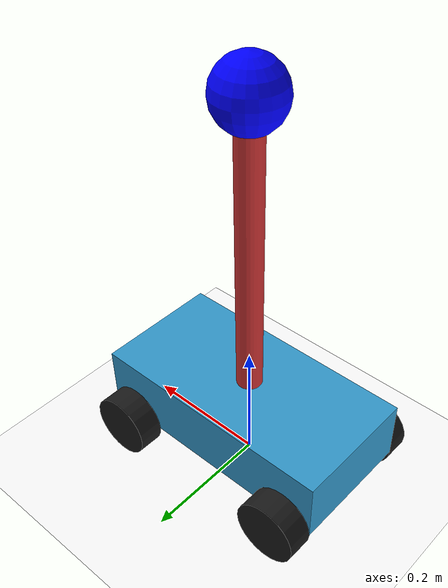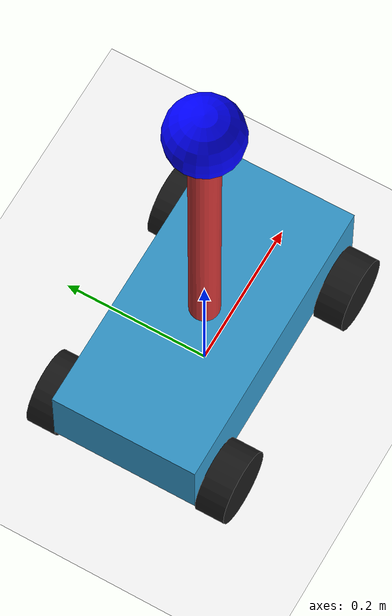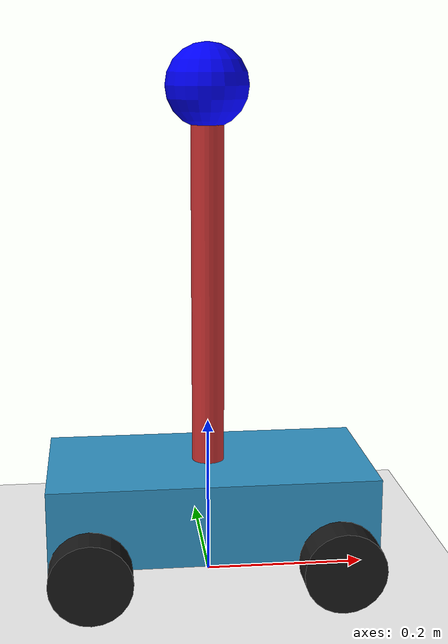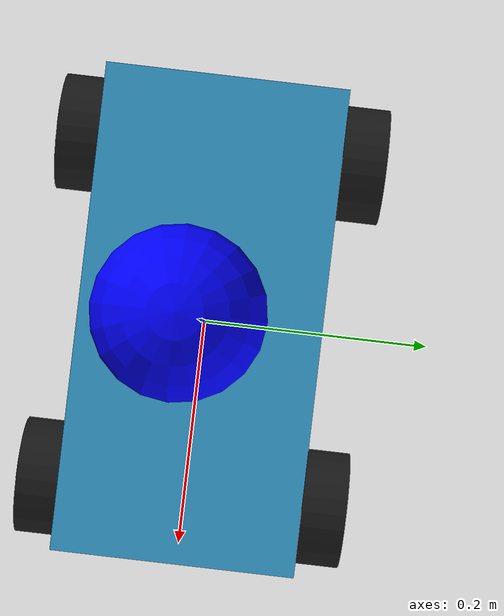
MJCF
<mujoco>
    <option gravity="0 0 -9.81"/>
    <worldbody>
        <light diffuse=".5 .5 .5" pos="0 0 10" dir="0 0 -1"/>
        <geom type="plane" size="2 2 0.1" rgba="1 1 1 1"/>

        <!-- Cart -->
        <body name="cart" pos="0 0 0.1">
            <!-- Cart motion restricted to x-axis -->
            <joint name="cart_joint" type="slide" axis="1 0 0"/>
            <geom name="cart_body" type="box" size="0.2 0.1 0.05" rgba="0.2 0.6 0.8 1"/>

            <!-- Wheels -->
            <!-- Front left wheel -->
            <body name="front_left_wheel" pos="-0.15 0.12 -0.05">
                <joint name="front_left_hinge" type="hinge" axis="0 1 0"/>
                <geom name="front_left_wheel" type="cylinder" size="0.05 0.02" pos="0 0 0" axisangle="1 0 0 90" rgba="0.1 0.1 0.1 1"/>
            </body>

            <!-- Front right wheel -->
            <body name="front_right_wheel" pos="-0.15 -0.12 -0.05">
                <joint name="front_right_hinge" type="hinge" axis="0 1 0"/>
                <geom name="front_right_wheel" type="cylinder" size="0.05 0.02" pos="0 0 0" axisangle="1 0 0 90" rgba="0.1 0.1 0.1 1"/>
            </body>

            <!-- Rear left wheel -->
            <body name="rear_left_wheel" pos="0.15 0.12 -0.05">
                <joint name="rear_left_hinge" type="hinge" axis="0 1 0"/>
                <geom name="rear_left_wheel" type="cylinder" size="0.05 0.02" pos="0 0 0" axisangle="1 0 0 90" rgba="0.1 0.1 0.1 1"/>
            </body>

            <!-- Rear right wheel -->
            <body name="rear_right_wheel" pos="0.15 -0.12 -0.05">
                <joint name="rear_right_hinge" type="hinge" axis="0 1 0"/>
                <geom name="rear_right_wheel" type="cylinder" size="0.05 0.02" pos="0 0 0" axisangle="1 0 0 90" rgba="0.1 0.1 0.1 1"/>
            </body>

            <!-- Pendulum -->
            <body name="pendulum" pos="0 0 0.005">
                <!-- Pendulum motion restricted to xz-plane -->
                <joint name="pendulum_joint" type="hinge" axis="0 1 0" pos="0 0 0"/>
                <geom name="pendulum_body" type="cylinder" size="0.02 0.25" pos="0 0 0.25" rgba="0.8 0.2 0.2 1"/>
                <site name="pendulum_tip" pos="0 0 0.505" size="0.05" rgba="0 0 1 1"/>
            </body>
        </body>
    </worldbody>

    <!-- Sensors -->
    <sensor>
        <!-- Measure cart position -->
        <jointpos joint="cart_joint"/>
        <!-- Measure pendulum angle -->
        <jointpos joint="pendulum_joint"/>
    </sensor>

    <!-- Actuators -->
    <actuator>
        <!-- Motor for cart -->
        <motor name="cart_motor" joint="cart_joint" ctrlrange="-10 10"/>
    </actuator>
</mujoco>
